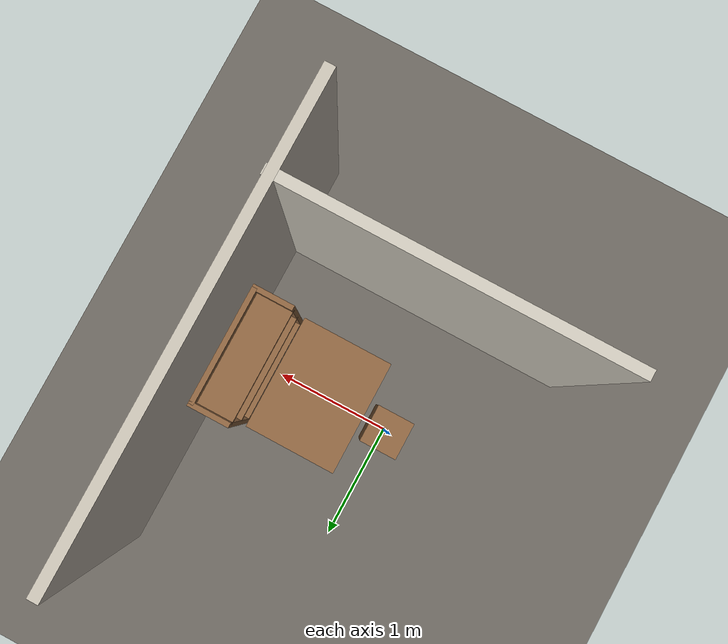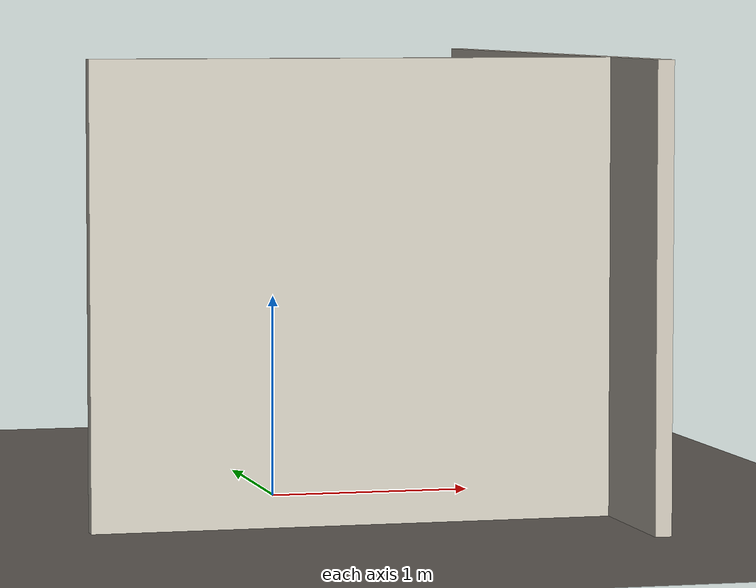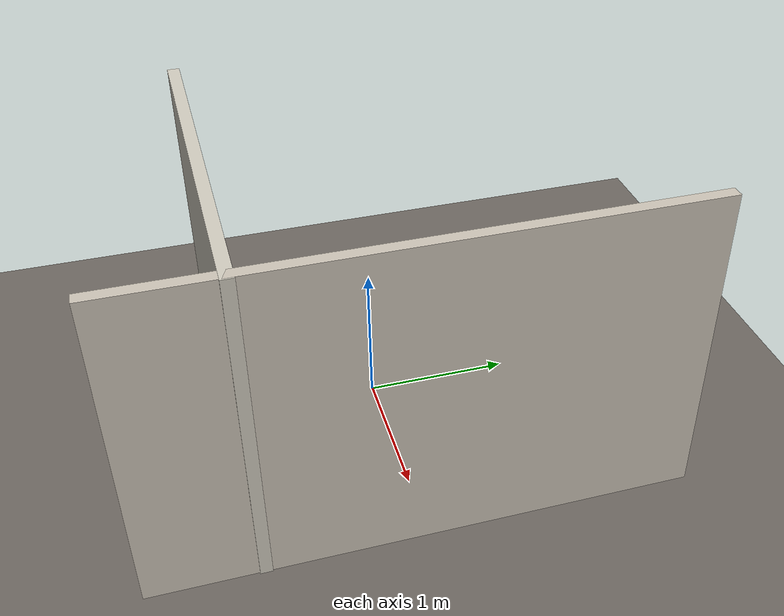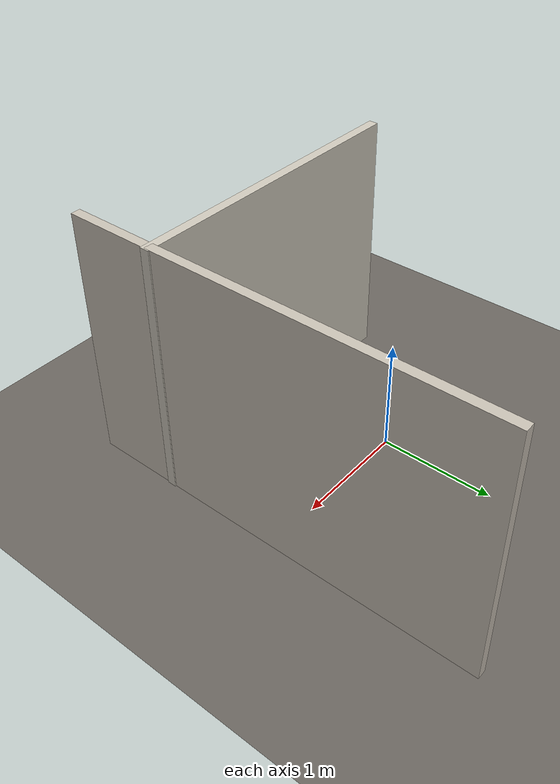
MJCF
<mujoco model="table_shelf_real">
  <compiler angle="radian" autolimits="true" boundmass="0" balanceinertia="true"/>
  <option impratio="10" gravity="0 0 -9.8" integrator="implicitfast" cone="elliptic" jacobian="sparse" noslip_iterations="4">
    <flag multiccd="enable" contact="enable" warmstart="enable"/>
  </option>
  <size njmax="8000" nconmax="8000"/>
  <visual>
    <global offwidth="1280" offheight="720"/>
    <map znear="0.001"/>
    <headlight ambient="0.42 0.42 0.42" diffuse="0.55 0.55 0.55"/>
  </visual>
  <asset>
    <texture name="woodtex" type="2d" builtin="flat" rgb1="0.55 0.39 0.25" width="32" height="32"/>
    <material name="wood" texture="woodtex" reflectance="0.05"/>
    <texture name="floortex" type="2d" builtin="checker" rgb1="0.45 0.43 0.40" rgb2="0.38 0.36 0.34" width="300" height="300"/>
    <material name="floormat" texture="floortex" texrepeat="10 10" reflectance="0.05"/>
  </asset>
  <default>
    <default class="furniture">
      <geom contype="8" conaffinity="15" group="0" friction="0.9 0.9 0.001"
            solref="0.02 1" solimp="0.998 0.998 0.001" density="700" material="wood"/>
    </default>
  </default>
  <worldbody>
    <light pos="0.3 0.5 2.6" dir="0 0 -1" diffuse="0.65 0.65 0.65"/>
    <light pos="-0.8 -0.8 2.2" dir="0.3 0.3 -1" diffuse="0.3 0.3 0.3"/>
    <geom name="floor" type="plane" size="5 5 0.1" pos="0 0 0" material="floormat" contype="8" conaffinity="15"/>
    <!-- room walls (back +x and side -y); camera side (+y) and front stay open -->
    <geom name="wall_back" type="box" pos="1.45 0 1.1" size="0.04 1.8 1.1" rgba="0.78 0.75 0.70 1" contype="8" conaffinity="15"/>
    <geom name="wall_side" type="box" pos="0.2 -1.05 1.1" size="1.3 0.04 1.1" rgba="0.80 0.78 0.73 1" contype="8" conaffinity="15"/>
    <!-- robot pedestal (cabinet look; visual-only so it can't collide with the robot mount) -->
    <geom name="pedestal" type="box" pos="0 0 0.29" size="0.16 0.16 0.29" material="wood"
          contype="0" conaffinity="0"/>
    <!-- work table in front of the robot: top at z=0.46 -->
    <body name="table" pos="0.62 0 0">
      <geom name="table_top" class="furniture" type="box" pos="0 0 0.44" size="0.40 0.50 0.02"/>
      <geom name="table_leg1" class="furniture" type="box" pos="0.34 0.44 0.21" size="0.03 0.03 0.21"/>
      <geom name="table_leg2" class="furniture" type="box" pos="0.34 -0.44 0.21" size="0.03 0.03 0.21"/>
      <geom name="table_leg3" class="furniture" type="box" pos="-0.34 0.44 0.21" size="0.03 0.03 0.21"/>
      <geom name="table_leg4" class="furniture" type="box" pos="-0.34 -0.44 0.21" size="0.03 0.03 0.21"/>
    </body>
    <!-- shelf unit standing on the floor behind the table (real bookshelf geometry) -->
    <body name="bookshelf" pos="1.18 0 0">
      <geom name="shelf_side_l" class="furniture" type="box" pos="0 0.45 0.75" size="0.16 0.02 0.75"/>
      <geom name="shelf_side_r" class="furniture" type="box" pos="0 -0.45 0.75" size="0.16 0.02 0.75"/>
      <geom name="shelf_board0" class="furniture" type="box" pos="0 0 0.50" size="0.16 0.45 0.02"/>
      <geom name="shelf_board1" class="furniture" type="box" pos="0 0 0.95" size="0.16 0.45 0.02"/>
      <geom name="shelf_board2" class="furniture" type="box" pos="0 0 1.40" size="0.16 0.45 0.02"/>
      <geom name="shelf_back" class="furniture" type="box" pos="0.14 0 0.75" size="0.02 0.45 0.75"/>
    </body>
  </worldbody>
</mujoco>
